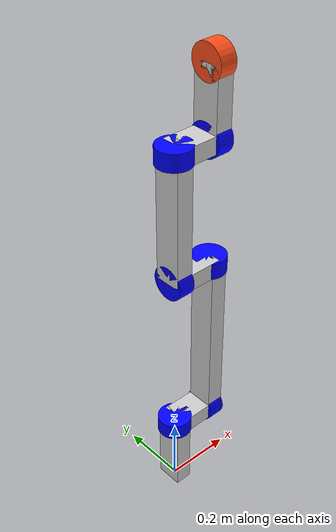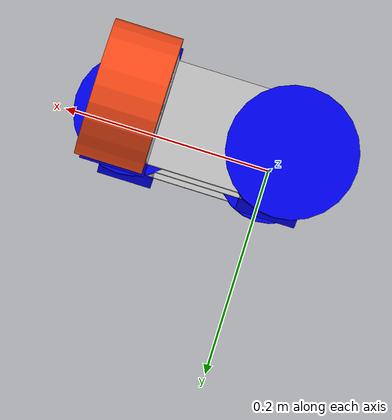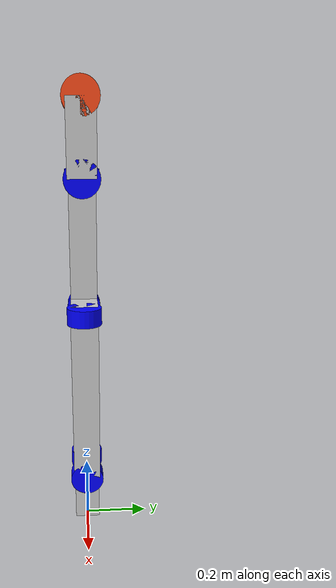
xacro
<?xml version="1.0"?>
<robot xmlns:xacro="http://www.ros.org/wiki/xacro"  name="robot">

    <material name="grey">
        <color rgba="0.8 0.8 0.8 1"/>
    </material>

    <material name="white">
        <color rgba="1 1 1 1"/>
    </material>

    <material name="orange">
        <color rgba="1 0.3 0.1 1"/>
    </material>

    <material name="blue">
        <color rgba="0 0 1 1"/>
    </material>

    <!-- BASE -->
    <link name="base_link">
    </link>

    <!-- BODY -->
    <joint name="body_joint" type="fixed">
        <parent link="base_link"/>
        <child link="body"/>
    </joint>

    <link name="body">
        <visual>
            <origin xyz="0 0 0.1" rpy="0 0 0"/>
            <geometry>
                <box size="0.05 0.08 0.2"/>
            </geometry>
            <material name="grey" />
        </visual>
    </link>

    <!-- JOINT 01 -->
    <joint name="body_to_joint01" type="revolute">
        <parent link="body"/>
        <child link="joint01"/>
        <origin xyz="0 0 0.225" rpy="0 0 0"/>
        <axis rpy="0 0 0" xyz="0 0 1" />
        <limit effort="0.1" lower="-3.14" upper="3.14" velocity="0.2"/>
    </joint>

    <link name="joint01">
        <visual>
            <geometry>
                <cylinder radius="0.05" length="0.05"/>
            </geometry>
            <material name="blue"/>
        </visual>
    </link>

    <joint name="joint01_to_link01" type="fixed">
        <origin xyz="0.05 0 0" rpy="0 0 0"/>
        <parent link="joint01"/>
        <child link="link01"/>
    </joint>

    <link name="link01">
        <visual>
            <geometry>
                <box size="0.1 0.08 0.05"/>
            </geometry>
            <material name="grey" />
        </visual>
    </link>

    <!-- JOINT 02 -->
    <joint name="link01_to_joint02" type="revolute">
        <parent link="link01"/>
        <child link="joint02"/>
        <origin xyz="0.075 0 0" rpy="0 0 0"/>
        <axis rpy="0 0 0" xyz="1 0 0" />
        <limit effort="0.1" lower="-3.14" upper="3.14" velocity="0.2"/>
    </joint>

    <link name="joint02">
        <visual>
            <geometry>
                <cylinder radius="0.05" length="0.05"/>
            </geometry>
            <origin xyz="0 0 0" rpy="0 ${pi/2} 0"/>
            <material name="blue"/>
        </visual>
    </link>

    <joint name="joint02_to_link02" type="fixed">
        <origin xyz="0 0 0.25" rpy="0 0 0"/>
        <parent link="joint02"/>
        <child link="link02"/>
    </joint>

    <link name="link02">
        <visual>
            <geometry>
                <box size="0.05 0.08 0.5"/>
            </geometry>
            <material name="grey" />
        </visual>
    </link>

    <!-- JOINT 03 -->
    <joint name="link02_to_joint03" type="revolute">
        <parent link="link02"/>
        <child link="joint03"/>
        <origin xyz="0 0 0.275" rpy="0 0 0"/>
        <axis rpy="0 0 0" xyz="0 0 1" />
        <limit effort="0.1" lower="-3.14" upper="3.14" velocity="0.2"/>
    </joint>

    <link name="joint03">
        <visual>
            <geometry>
                <cylinder radius="0.05" length="0.05"/>
            </geometry>
            <origin xyz="0 0 0" rpy="0 0 0"/>
            <material name="blue"/>
        </visual>
    </link>

    <joint name="joint03_to_link03" type="fixed">
        <origin xyz="-0.05 0 0" rpy="0 0 0"/>
        <parent link="joint03"/>
        <child link="link03"/>
    </joint>

    <link name="link03">
        <visual>
            <geometry>
                <box size="0.1 0.08 0.05"/>
            </geometry>
            <material name="grey" />
        </visual>
    </link>

    <!-- JOINT 04 -->
    <joint name="link03_to_joint04" type="revolute">
        <parent link="link03"/>
        <child link="joint04"/>
        <origin xyz="-0.075 0 0" rpy="0 0 0"/>
        <axis rpy="0 0 0" xyz="1 0 0" />
        <limit effort="0.1" lower="-3.14" upper="3.14" velocity="0.2"/>
    </joint>

    <link name="joint04">
        <visual>
            <geometry>
                <cylinder radius="0.05" length="0.05"/>
            </geometry>
            <origin xyz="0 0 0" rpy="0 ${pi/2} 0"/>
            <material name="blue"/>
        </visual>
    </link>

    <joint name="joint04_to_link04" type="fixed">
        <origin xyz="0 0 0.175" rpy="0 0 0"/>
        <parent link="joint04"/>
        <child link="link04"/>
    </joint>

    <link name="link04">
        <visual>
            <geometry>
                <box size="0.05 0.08 0.35"/>
            </geometry>
            <material name="grey" />
        </visual>
    </link>

    <!-- JOINT 05 -->
    <joint name="link04_to_joint05" type="revolute">
        <parent link="link04"/>
        <child link="joint05"/>
        <origin xyz="0 0 0.2" rpy="0 0 0"/>
        <axis rpy="0 0 0" xyz="0 0 1" />
        <limit effort="0.1" lower="-3.14" upper="3.14" velocity="0.2"/>
    </joint>

    <link name="joint05">
        <visual>
            <geometry>
                <cylinder radius="0.05" length="0.05"/>
            </geometry>
            <origin xyz="0 0 0" rpy="0 0 0"/>
            <material name="blue"/>
        </visual>
    </link>

    <joint name="joint05_to_link05" type="fixed">
        <origin xyz="0.05 0 0" rpy="0 0 0"/>
        <parent link="joint05"/>
        <child link="link05"/>
    </joint>

    <link name="link05">
        <visual>
            <geometry>
                <box size="0.1 0.08 0.05"/>
            </geometry>
            <material name="grey" />
        </visual>
    </link>

    <!-- JOINT 06 -->
    <joint name="link05_to_joint06" type="revolute">
        <parent link="link05"/>
        <child link="joint06"/>
        <origin xyz="0.075 0 0" rpy="0 0 0"/>
        <axis rpy="0 0 0" xyz="1 0 0" />
        <limit effort="0.1" lower="-3.14" upper="3.14" velocity="0.2"/>
    </joint>

    <link name="joint06">
        <visual>
            <geometry>
                <cylinder radius="0.05" length="0.05"/>
            </geometry>
            <origin xyz="0 0 0" rpy="0 ${pi/2} 0"/>
            <material name="blue"/>
        </visual>
    </link>

    <joint name="joint06_to_link06" type="fixed">
        <origin xyz="0 0 0.1" rpy="0 0 0"/>
        <parent link="joint06"/>
        <child link="link06"/>
    </joint>

    <link name="link06">
        <visual>
            <geometry>
                <box size="0.05 0.08 0.2"/>
            </geometry>
            <material name="grey" />
        </visual>
    </link>

    <!--EDGE -->
    <joint name="link06_to_edge" type="fixed">
        <origin xyz="0 0 0.1" rpy="0 0 0"/>
        <parent link="link06"/>
        <child link="edge"/>
    </joint>

    <link name="edge">
        <visual>
            <geometry>
                <cylinder radius="0.05" length="0.05"/>
            </geometry>
            <origin xyz="0 0 0" rpy="0 ${pi/2} 0"/>
            <material name="orange"/>
        </visual>
    </link>

</robot>
